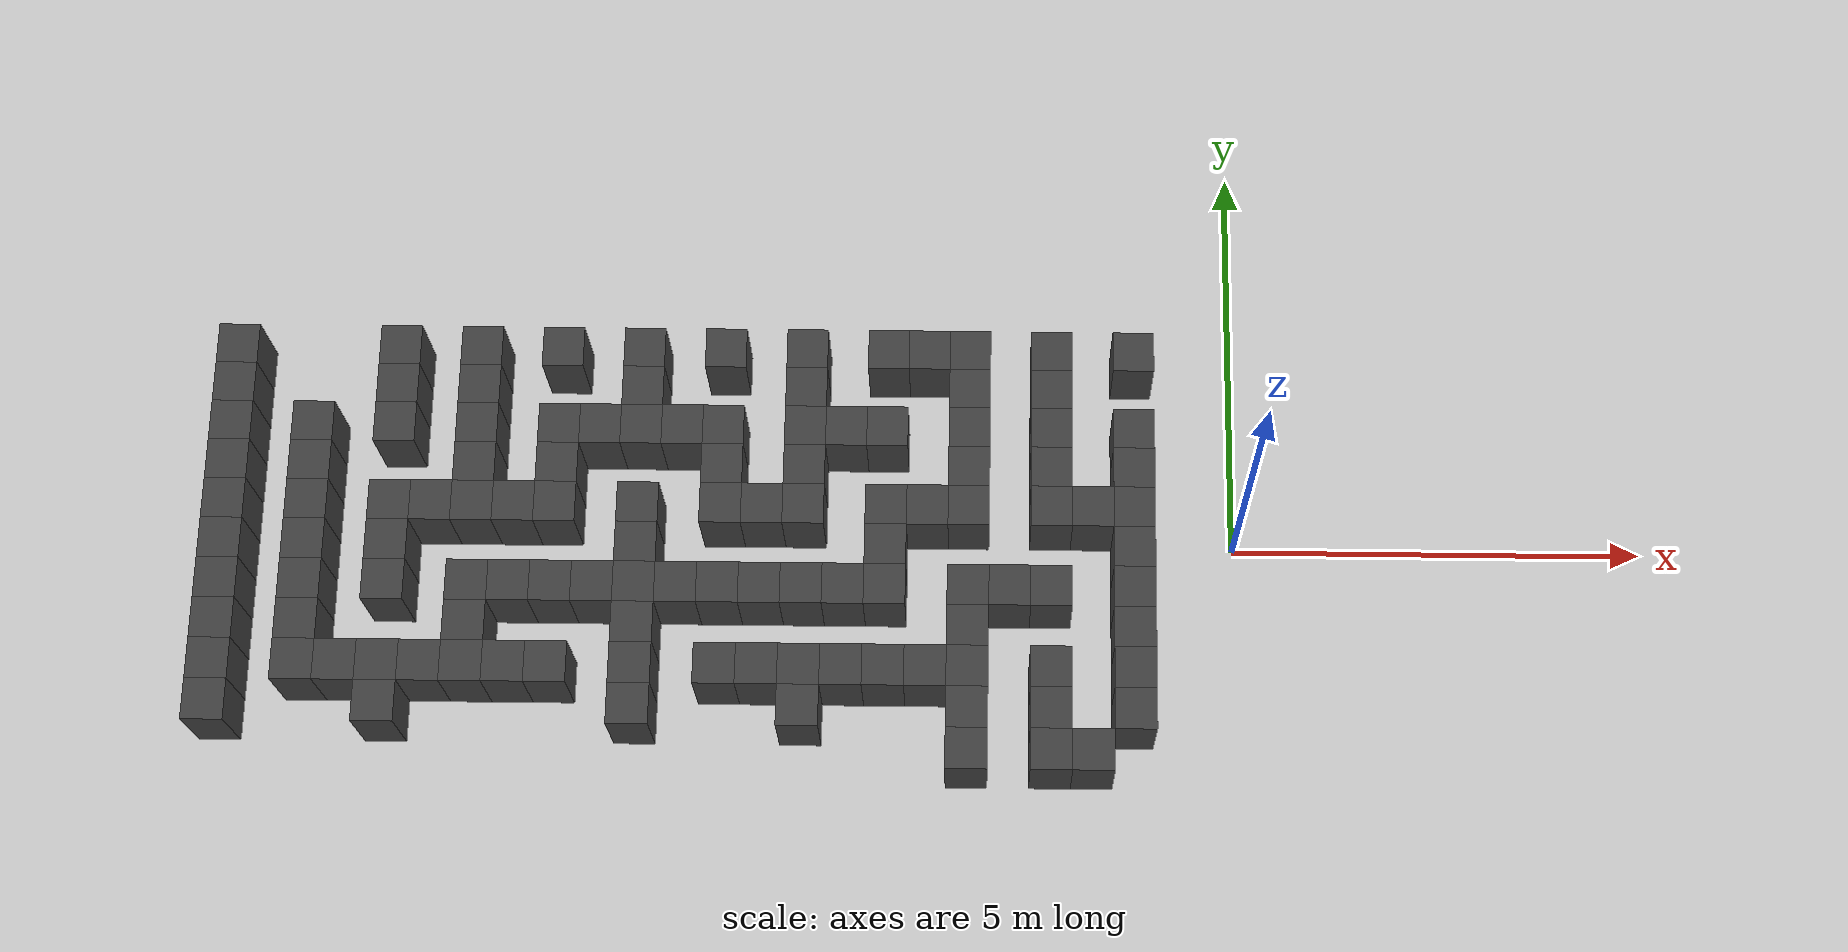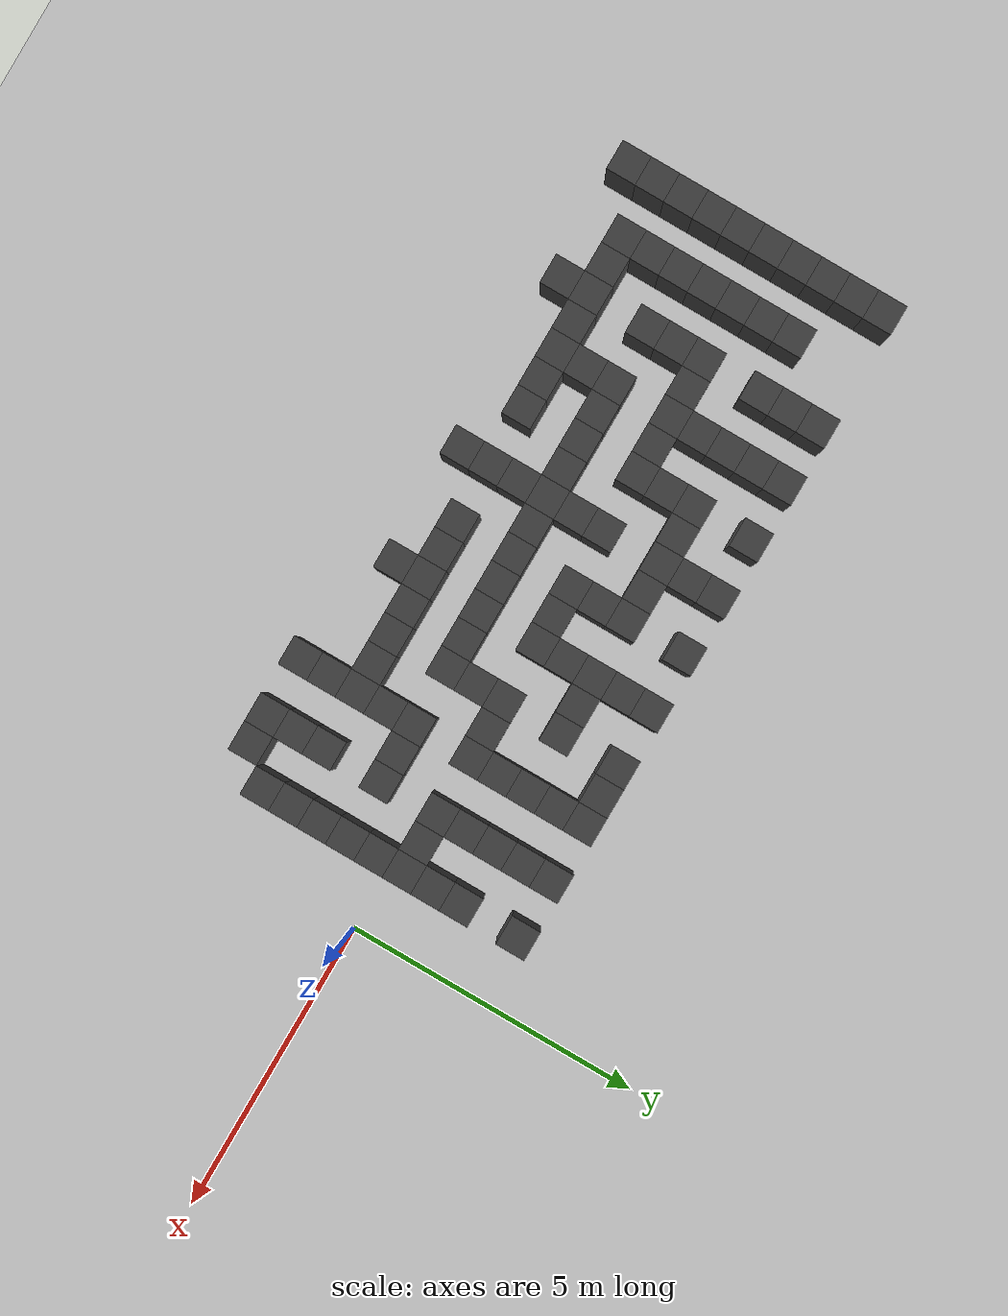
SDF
<sdf version="1.7">
 <world name="map_18553">
  <model name="ground_plane">
   <static>true</static>
   <link name="link">
    <collision name="collision">
     <geometry><plane><normal>0 0 1</normal><size>200 200</size></plane></geometry>
    </collision>
    <visual name="visual">
     <geometry><plane><normal>0 0 1</normal><size>200 200</size></plane></geometry>
     <material><ambient>0.8 0.8 0.8 1</ambient><diffuse>0.8 0.8 0.8 1</diffuse></material>
    </visual>
   </link>
  </model>
  <model name="maze_environment">
   <static>true</static>
   <link name="wall_510">
    <pose>-12.250 2.250 0.500 0 0 0</pose>
    <collision name="col"><geometry><box><size>0.5 0.5 1.0</size></box></geometry></collision>
    <visual name="vis">
     <geometry><box><size>0.5 0.5 1.0</size></box></geometry>
     <material><ambient>0.15 0.15 0.15 1</ambient><diffuse>0.25 0.25 0.25 1</diffuse></material>
    </visual>
   </link>
   <link name="wall_511">
    <pose>-10.250 2.250 0.500 0 0 0</pose>
    <collision name="col"><geometry><box><size>0.5 0.5 1.0</size></box></geometry></collision>
    <visual name="vis">
     <geometry><box><size>0.5 0.5 1.0</size></box></geometry>
     <material><ambient>0.15 0.15 0.15 1</ambient><diffuse>0.25 0.25 0.25 1</diffuse></material>
    </visual>
   </link>
   <link name="wall_512">
    <pose>-9.250 2.250 0.500 0 0 0</pose>
    <collision name="col"><geometry><box><size>0.5 0.5 1.0</size></box></geometry></collision>
    <visual name="vis">
     <geometry><box><size>0.5 0.5 1.0</size></box></geometry>
     <material><ambient>0.15 0.15 0.15 1</ambient><diffuse>0.25 0.25 0.25 1</diffuse></material>
    </visual>
   </link>
   <link name="wall_513">
    <pose>-8.250 2.250 0.500 0 0 0</pose>
    <collision name="col"><geometry><box><size>0.5 0.5 1.0</size></box></geometry></collision>
    <visual name="vis">
     <geometry><box><size>0.5 0.5 1.0</size></box></geometry>
     <material><ambient>0.15 0.15 0.15 1</ambient><diffuse>0.25 0.25 0.25 1</diffuse></material>
    </visual>
   </link>
   <link name="wall_514">
    <pose>-7.250 2.250 0.500 0 0 0</pose>
    <collision name="col"><geometry><box><size>0.5 0.5 1.0</size></box></geometry></collision>
    <visual name="vis">
     <geometry><box><size>0.5 0.5 1.0</size></box></geometry>
     <material><ambient>0.15 0.15 0.15 1</ambient><diffuse>0.25 0.25 0.25 1</diffuse></material>
    </visual>
   </link>
   <link name="wall_515">
    <pose>-6.250 2.250 0.500 0 0 0</pose>
    <collision name="col"><geometry><box><size>0.5 0.5 1.0</size></box></geometry></collision>
    <visual name="vis">
     <geometry><box><size>0.5 0.5 1.0</size></box></geometry>
     <material><ambient>0.15 0.15 0.15 1</ambient><diffuse>0.25 0.25 0.25 1</diffuse></material>
    </visual>
   </link>
   <link name="wall_516">
    <pose>-5.250 2.250 0.500 0 0 0</pose>
    <collision name="col"><geometry><box><size>0.5 0.5 1.0</size></box></geometry></collision>
    <visual name="vis">
     <geometry><box><size>0.5 0.5 1.0</size></box></geometry>
     <material><ambient>0.15 0.15 0.15 1</ambient><diffuse>0.25 0.25 0.25 1</diffuse></material>
    </visual>
   </link>
   <link name="wall_517">
    <pose>-4.250 2.250 0.500 0 0 0</pose>
    <collision name="col"><geometry><box><size>0.5 0.5 1.0</size></box></geometry></collision>
    <visual name="vis">
     <geometry><box><size>0.5 0.5 1.0</size></box></geometry>
     <material><ambient>0.15 0.15 0.15 1</ambient><diffuse>0.25 0.25 0.25 1</diffuse></material>
    </visual>
   </link>
   <link name="wall_518">
    <pose>-3.750 2.250 0.500 0 0 0</pose>
    <collision name="col"><geometry><box><size>0.5 0.5 1.0</size></box></geometry></collision>
    <visual name="vis">
     <geometry><box><size>0.5 0.5 1.0</size></box></geometry>
     <material><ambient>0.15 0.15 0.15 1</ambient><diffuse>0.25 0.25 0.25 1</diffuse></material>
    </visual>
   </link>
   <link name="wall_519">
    <pose>-3.250 2.250 0.500 0 0 0</pose>
    <collision name="col"><geometry><box><size>0.5 0.5 1.0</size></box></geometry></collision>
    <visual name="vis">
     <geometry><box><size>0.5 0.5 1.0</size></box></geometry>
     <material><ambient>0.15 0.15 0.15 1</ambient><diffuse>0.25 0.25 0.25 1</diffuse></material>
    </visual>
   </link>
   <link name="wall_520">
    <pose>-2.250 2.250 0.500 0 0 0</pose>
    <collision name="col"><geometry><box><size>0.5 0.5 1.0</size></box></geometry></collision>
    <visual name="vis">
     <geometry><box><size>0.5 0.5 1.0</size></box></geometry>
     <material><ambient>0.15 0.15 0.15 1</ambient><diffuse>0.25 0.25 0.25 1</diffuse></material>
    </visual>
   </link>
   <link name="wall_521">
    <pose>-1.250 2.250 0.500 0 0 0</pose>
    <collision name="col"><geometry><box><size>0.5 0.5 1.0</size></box></geometry></collision>
    <visual name="vis">
     <geometry><box><size>0.5 0.5 1.0</size></box></geometry>
     <material><ambient>0.15 0.15 0.15 1</ambient><diffuse>0.25 0.25 0.25 1</diffuse></material>
    </visual>
   </link>
   <link name="wall_542">
    <pose>-12.250 1.750 0.500 0 0 0</pose>
    <collision name="col"><geometry><box><size>0.5 0.5 1.0</size></box></geometry></collision>
    <visual name="vis">
     <geometry><box><size>0.5 0.5 1.0</size></box></geometry>
     <material><ambient>0.15 0.15 0.15 1</ambient><diffuse>0.25 0.25 0.25 1</diffuse></material>
    </visual>
   </link>
   <link name="wall_543">
    <pose>-10.250 1.750 0.500 0 0 0</pose>
    <collision name="col"><geometry><box><size>0.5 0.5 1.0</size></box></geometry></collision>
    <visual name="vis">
     <geometry><box><size>0.5 0.5 1.0</size></box></geometry>
     <material><ambient>0.15 0.15 0.15 1</ambient><diffuse>0.25 0.25 0.25 1</diffuse></material>
    </visual>
   </link>
   <link name="wall_544">
    <pose>-9.250 1.750 0.500 0 0 0</pose>
    <collision name="col"><geometry><box><size>0.5 0.5 1.0</size></box></geometry></collision>
    <visual name="vis">
     <geometry><box><size>0.5 0.5 1.0</size></box></geometry>
     <material><ambient>0.15 0.15 0.15 1</ambient><diffuse>0.25 0.25 0.25 1</diffuse></material>
    </visual>
   </link>
   <link name="wall_545">
    <pose>-7.250 1.750 0.500 0 0 0</pose>
    <collision name="col"><geometry><box><size>0.5 0.5 1.0</size></box></geometry></collision>
    <visual name="vis">
     <geometry><box><size>0.5 0.5 1.0</size></box></geometry>
     <material><ambient>0.15 0.15 0.15 1</ambient><diffuse>0.25 0.25 0.25 1</diffuse></material>
    </visual>
   </link>
   <link name="wall_546">
    <pose>-5.250 1.750 0.500 0 0 0</pose>
    <collision name="col"><geometry><box><size>0.5 0.5 1.0</size></box></geometry></collision>
    <visual name="vis">
     <geometry><box><size>0.5 0.5 1.0</size></box></geometry>
     <material><ambient>0.15 0.15 0.15 1</ambient><diffuse>0.25 0.25 0.25 1</diffuse></material>
    </visual>
   </link>
   <link name="wall_547">
    <pose>-3.250 1.750 0.500 0 0 0</pose>
    <collision name="col"><geometry><box><size>0.5 0.5 1.0</size></box></geometry></collision>
    <visual name="vis">
     <geometry><box><size>0.5 0.5 1.0</size></box></geometry>
     <material><ambient>0.15 0.15 0.15 1</ambient><diffuse>0.25 0.25 0.25 1</diffuse></material>
    </visual>
   </link>
   <link name="wall_548">
    <pose>-2.250 1.750 0.500 0 0 0</pose>
    <collision name="col"><geometry><box><size>0.5 0.5 1.0</size></box></geometry></collision>
    <visual name="vis">
     <geometry><box><size>0.5 0.5 1.0</size></box></geometry>
     <material><ambient>0.15 0.15 0.15 1</ambient><diffuse>0.25 0.25 0.25 1</diffuse></material>
    </visual>
   </link>
   <link name="wall_557">
    <pose>-12.250 1.250 0.500 0 0 0</pose>
    <collision name="col"><geometry><box><size>0.5 0.5 1.0</size></box></geometry></collision>
    <visual name="vis">
     <geometry><box><size>0.5 0.5 1.0</size></box></geometry>
     <material><ambient>0.15 0.15 0.15 1</ambient><diffuse>0.25 0.25 0.25 1</diffuse></material>
    </visual>
   </link>
   <link name="wall_558">
    <pose>-11.250 1.250 0.500 0 0 0</pose>
    <collision name="col"><geometry><box><size>0.5 0.5 1.0</size></box></geometry></collision>
    <visual name="vis">
     <geometry><box><size>0.5 0.5 1.0</size></box></geometry>
     <material><ambient>0.15 0.15 0.15 1</ambient><diffuse>0.25 0.25 0.25 1</diffuse></material>
    </visual>
   </link>
   <link name="wall_559">
    <pose>-10.250 1.250 0.500 0 0 0</pose>
    <collision name="col"><geometry><box><size>0.5 0.5 1.0</size></box></geometry></collision>
    <visual name="vis">
     <geometry><box><size>0.5 0.5 1.0</size></box></geometry>
     <material><ambient>0.15 0.15 0.15 1</ambient><diffuse>0.25 0.25 0.25 1</diffuse></material>
    </visual>
   </link>
   <link name="wall_560">
    <pose>-9.250 1.250 0.500 0 0 0</pose>
    <collision name="col"><geometry><box><size>0.5 0.5 1.0</size></box></geometry></collision>
    <visual name="vis">
     <geometry><box><size>0.5 0.5 1.0</size></box></geometry>
     <material><ambient>0.15 0.15 0.15 1</ambient><diffuse>0.25 0.25 0.25 1</diffuse></material>
    </visual>
   </link>
   <link name="wall_561">
    <pose>-8.250 1.250 0.500 0 0 0</pose>
    <collision name="col"><geometry><box><size>0.5 0.5 1.0</size></box></geometry></collision>
    <visual name="vis">
     <geometry><box><size>0.5 0.5 1.0</size></box></geometry>
     <material><ambient>0.15 0.15 0.15 1</ambient><diffuse>0.25 0.25 0.25 1</diffuse></material>
    </visual>
   </link>
   <link name="wall_562">
    <pose>-7.750 1.250 0.500 0 0 0</pose>
    <collision name="col"><geometry><box><size>0.5 0.5 1.0</size></box></geometry></collision>
    <visual name="vis">
     <geometry><box><size>0.5 0.5 1.0</size></box></geometry>
     <material><ambient>0.15 0.15 0.15 1</ambient><diffuse>0.25 0.25 0.25 1</diffuse></material>
    </visual>
   </link>
   <link name="wall_563">
    <pose>-7.250 1.250 0.500 0 0 0</pose>
    <collision name="col"><geometry><box><size>0.5 0.5 1.0</size></box></geometry></collision>
    <visual name="vis">
     <geometry><box><size>0.5 0.5 1.0</size></box></geometry>
     <material><ambient>0.15 0.15 0.15 1</ambient><diffuse>0.25 0.25 0.25 1</diffuse></material>
    </visual>
   </link>
   <link name="wall_564">
    <pose>-6.750 1.250 0.500 0 0 0</pose>
    <collision name="col"><geometry><box><size>0.5 0.5 1.0</size></box></geometry></collision>
    <visual name="vis">
     <geometry><box><size>0.5 0.5 1.0</size></box></geometry>
     <material><ambient>0.15 0.15 0.15 1</ambient><diffuse>0.25 0.25 0.25 1</diffuse></material>
    </visual>
   </link>
   <link name="wall_565">
    <pose>-6.250 1.250 0.500 0 0 0</pose>
    <collision name="col"><geometry><box><size>0.5 0.5 1.0</size></box></geometry></collision>
    <visual name="vis">
     <geometry><box><size>0.5 0.5 1.0</size></box></geometry>
     <material><ambient>0.15 0.15 0.15 1</ambient><diffuse>0.25 0.25 0.25 1</diffuse></material>
    </visual>
   </link>
   <link name="wall_566">
    <pose>-5.250 1.250 0.500 0 0 0</pose>
    <collision name="col"><geometry><box><size>0.5 0.5 1.0</size></box></geometry></collision>
    <visual name="vis">
     <geometry><box><size>0.5 0.5 1.0</size></box></geometry>
     <material><ambient>0.15 0.15 0.15 1</ambient><diffuse>0.25 0.25 0.25 1</diffuse></material>
    </visual>
   </link>
   <link name="wall_567">
    <pose>-4.750 1.250 0.500 0 0 0</pose>
    <collision name="col"><geometry><box><size>0.5 0.5 1.0</size></box></geometry></collision>
    <visual name="vis">
     <geometry><box><size>0.5 0.5 1.0</size></box></geometry>
     <material><ambient>0.15 0.15 0.15 1</ambient><diffuse>0.25 0.25 0.25 1</diffuse></material>
    </visual>
   </link>
   <link name="wall_568">
    <pose>-4.250 1.250 0.500 0 0 0</pose>
    <collision name="col"><geometry><box><size>0.5 0.5 1.0</size></box></geometry></collision>
    <visual name="vis">
     <geometry><box><size>0.5 0.5 1.0</size></box></geometry>
     <material><ambient>0.15 0.15 0.15 1</ambient><diffuse>0.25 0.25 0.25 1</diffuse></material>
    </visual>
   </link>
   <link name="wall_569">
    <pose>-3.250 1.250 0.500 0 0 0</pose>
    <collision name="col"><geometry><box><size>0.5 0.5 1.0</size></box></geometry></collision>
    <visual name="vis">
     <geometry><box><size>0.5 0.5 1.0</size></box></geometry>
     <material><ambient>0.15 0.15 0.15 1</ambient><diffuse>0.25 0.25 0.25 1</diffuse></material>
    </visual>
   </link>
   <link name="wall_570">
    <pose>-2.250 1.250 0.500 0 0 0</pose>
    <collision name="col"><geometry><box><size>0.5 0.5 1.0</size></box></geometry></collision>
    <visual name="vis">
     <geometry><box><size>0.5 0.5 1.0</size></box></geometry>
     <material><ambient>0.15 0.15 0.15 1</ambient><diffuse>0.25 0.25 0.25 1</diffuse></material>
    </visual>
   </link>
   <link name="wall_571">
    <pose>-1.250 1.250 0.500 0 0 0</pose>
    <collision name="col"><geometry><box><size>0.5 0.5 1.0</size></box></geometry></collision>
    <visual name="vis">
     <geometry><box><size>0.5 0.5 1.0</size></box></geometry>
     <material><ambient>0.15 0.15 0.15 1</ambient><diffuse>0.25 0.25 0.25 1</diffuse></material>
    </visual>
   </link>
   <link name="wall_591">
    <pose>-12.250 0.750 0.500 0 0 0</pose>
    <collision name="col"><geometry><box><size>0.5 0.5 1.0</size></box></geometry></collision>
    <visual name="vis">
     <geometry><box><size>0.5 0.5 1.0</size></box></geometry>
     <material><ambient>0.15 0.15 0.15 1</ambient><diffuse>0.25 0.25 0.25 1</diffuse></material>
    </visual>
   </link>
   <link name="wall_592">
    <pose>-11.250 0.750 0.500 0 0 0</pose>
    <collision name="col"><geometry><box><size>0.5 0.5 1.0</size></box></geometry></collision>
    <visual name="vis">
     <geometry><box><size>0.5 0.5 1.0</size></box></geometry>
     <material><ambient>0.15 0.15 0.15 1</ambient><diffuse>0.25 0.25 0.25 1</diffuse></material>
    </visual>
   </link>
   <link name="wall_593">
    <pose>-9.250 0.750 0.500 0 0 0</pose>
    <collision name="col"><geometry><box><size>0.5 0.5 1.0</size></box></geometry></collision>
    <visual name="vis">
     <geometry><box><size>0.5 0.5 1.0</size></box></geometry>
     <material><ambient>0.15 0.15 0.15 1</ambient><diffuse>0.25 0.25 0.25 1</diffuse></material>
    </visual>
   </link>
   <link name="wall_594">
    <pose>-8.250 0.750 0.500 0 0 0</pose>
    <collision name="col"><geometry><box><size>0.5 0.5 1.0</size></box></geometry></collision>
    <visual name="vis">
     <geometry><box><size>0.5 0.5 1.0</size></box></geometry>
     <material><ambient>0.15 0.15 0.15 1</ambient><diffuse>0.25 0.25 0.25 1</diffuse></material>
    </visual>
   </link>
   <link name="wall_595">
    <pose>-6.250 0.750 0.500 0 0 0</pose>
    <collision name="col"><geometry><box><size>0.5 0.5 1.0</size></box></geometry></collision>
    <visual name="vis">
     <geometry><box><size>0.5 0.5 1.0</size></box></geometry>
     <material><ambient>0.15 0.15 0.15 1</ambient><diffuse>0.25 0.25 0.25 1</diffuse></material>
    </visual>
   </link>
   <link name="wall_596">
    <pose>-5.250 0.750 0.500 0 0 0</pose>
    <collision name="col"><geometry><box><size>0.5 0.5 1.0</size></box></geometry></collision>
    <visual name="vis">
     <geometry><box><size>0.5 0.5 1.0</size></box></geometry>
     <material><ambient>0.15 0.15 0.15 1</ambient><diffuse>0.25 0.25 0.25 1</diffuse></material>
    </visual>
   </link>
   <link name="wall_597">
    <pose>-3.250 0.750 0.500 0 0 0</pose>
    <collision name="col"><geometry><box><size>0.5 0.5 1.0</size></box></geometry></collision>
    <visual name="vis">
     <geometry><box><size>0.5 0.5 1.0</size></box></geometry>
     <material><ambient>0.15 0.15 0.15 1</ambient><diffuse>0.25 0.25 0.25 1</diffuse></material>
    </visual>
   </link>
   <link name="wall_598">
    <pose>-2.250 0.750 0.500 0 0 0</pose>
    <collision name="col"><geometry><box><size>0.5 0.5 1.0</size></box></geometry></collision>
    <visual name="vis">
     <geometry><box><size>0.5 0.5 1.0</size></box></geometry>
     <material><ambient>0.15 0.15 0.15 1</ambient><diffuse>0.25 0.25 0.25 1</diffuse></material>
    </visual>
   </link>
   <link name="wall_599">
    <pose>-1.250 0.750 0.500 0 0 0</pose>
    <collision name="col"><geometry><box><size>0.5 0.5 1.0</size></box></geometry></collision>
    <visual name="vis">
     <geometry><box><size>0.5 0.5 1.0</size></box></geometry>
     <material><ambient>0.15 0.15 0.15 1</ambient><diffuse>0.25 0.25 0.25 1</diffuse></material>
    </visual>
   </link>
   <link name="wall_606">
    <pose>-12.250 0.250 0.500 0 0 0</pose>
    <collision name="col"><geometry><box><size>0.5 0.5 1.0</size></box></geometry></collision>
    <visual name="vis">
     <geometry><box><size>0.5 0.5 1.0</size></box></geometry>
     <material><ambient>0.15 0.15 0.15 1</ambient><diffuse>0.25 0.25 0.25 1</diffuse></material>
    </visual>
   </link>
   <link name="wall_607">
    <pose>-11.250 0.250 0.500 0 0 0</pose>
    <collision name="col"><geometry><box><size>0.5 0.5 1.0</size></box></geometry></collision>
    <visual name="vis">
     <geometry><box><size>0.5 0.5 1.0</size></box></geometry>
     <material><ambient>0.15 0.15 0.15 1</ambient><diffuse>0.25 0.25 0.25 1</diffuse></material>
    </visual>
   </link>
   <link name="wall_608">
    <pose>-10.250 0.250 0.500 0 0 0</pose>
    <collision name="col"><geometry><box><size>0.5 0.5 1.0</size></box></geometry></collision>
    <visual name="vis">
     <geometry><box><size>0.5 0.5 1.0</size></box></geometry>
     <material><ambient>0.15 0.15 0.15 1</ambient><diffuse>0.25 0.25 0.25 1</diffuse></material>
    </visual>
   </link>
   <link name="wall_609">
    <pose>-9.750 0.250 0.500 0 0 0</pose>
    <collision name="col"><geometry><box><size>0.5 0.5 1.0</size></box></geometry></collision>
    <visual name="vis">
     <geometry><box><size>0.5 0.5 1.0</size></box></geometry>
     <material><ambient>0.15 0.15 0.15 1</ambient><diffuse>0.25 0.25 0.25 1</diffuse></material>
    </visual>
   </link>
   <link name="wall_610">
    <pose>-9.250 0.250 0.500 0 0 0</pose>
    <collision name="col"><geometry><box><size>0.5 0.5 1.0</size></box></geometry></collision>
    <visual name="vis">
     <geometry><box><size>0.5 0.5 1.0</size></box></geometry>
     <material><ambient>0.15 0.15 0.15 1</ambient><diffuse>0.25 0.25 0.25 1</diffuse></material>
    </visual>
   </link>
   <link name="wall_611">
    <pose>-8.750 0.250 0.500 0 0 0</pose>
    <collision name="col"><geometry><box><size>0.5 0.5 1.0</size></box></geometry></collision>
    <visual name="vis">
     <geometry><box><size>0.5 0.5 1.0</size></box></geometry>
     <material><ambient>0.15 0.15 0.15 1</ambient><diffuse>0.25 0.25 0.25 1</diffuse></material>
    </visual>
   </link>
   <link name="wall_612">
    <pose>-8.250 0.250 0.500 0 0 0</pose>
    <collision name="col"><geometry><box><size>0.5 0.5 1.0</size></box></geometry></collision>
    <visual name="vis">
     <geometry><box><size>0.5 0.5 1.0</size></box></geometry>
     <material><ambient>0.15 0.15 0.15 1</ambient><diffuse>0.25 0.25 0.25 1</diffuse></material>
    </visual>
   </link>
   <link name="wall_613">
    <pose>-7.250 0.250 0.500 0 0 0</pose>
    <collision name="col"><geometry><box><size>0.5 0.5 1.0</size></box></geometry></collision>
    <visual name="vis">
     <geometry><box><size>0.5 0.5 1.0</size></box></geometry>
     <material><ambient>0.15 0.15 0.15 1</ambient><diffuse>0.25 0.25 0.25 1</diffuse></material>
    </visual>
   </link>
   <link name="wall_614">
    <pose>-6.250 0.250 0.500 0 0 0</pose>
    <collision name="col"><geometry><box><size>0.5 0.5 1.0</size></box></geometry></collision>
    <visual name="vis">
     <geometry><box><size>0.5 0.5 1.0</size></box></geometry>
     <material><ambient>0.15 0.15 0.15 1</ambient><diffuse>0.25 0.25 0.25 1</diffuse></material>
    </visual>
   </link>
   <link name="wall_615">
    <pose>-5.750 0.250 0.500 0 0 0</pose>
    <collision name="col"><geometry><box><size>0.5 0.5 1.0</size></box></geometry></collision>
    <visual name="vis">
     <geometry><box><size>0.5 0.5 1.0</size></box></geometry>
     <material><ambient>0.15 0.15 0.15 1</ambient><diffuse>0.25 0.25 0.25 1</diffuse></material>
    </visual>
   </link>
   <link name="wall_616">
    <pose>-5.250 0.250 0.500 0 0 0</pose>
    <collision name="col"><geometry><box><size>0.5 0.5 1.0</size></box></geometry></collision>
    <visual name="vis">
     <geometry><box><size>0.5 0.5 1.0</size></box></geometry>
     <material><ambient>0.15 0.15 0.15 1</ambient><diffuse>0.25 0.25 0.25 1</diffuse></material>
    </visual>
   </link>
   <link name="wall_617">
    <pose>-4.250 0.250 0.500 0 0 0</pose>
    <collision name="col"><geometry><box><size>0.5 0.5 1.0</size></box></geometry></collision>
    <visual name="vis">
     <geometry><box><size>0.5 0.5 1.0</size></box></geometry>
     <material><ambient>0.15 0.15 0.15 1</ambient><diffuse>0.25 0.25 0.25 1</diffuse></material>
    </visual>
   </link>
   <link name="wall_618">
    <pose>-3.750 0.250 0.500 0 0 0</pose>
    <collision name="col"><geometry><box><size>0.5 0.5 1.0</size></box></geometry></collision>
    <visual name="vis">
     <geometry><box><size>0.5 0.5 1.0</size></box></geometry>
     <material><ambient>0.15 0.15 0.15 1</ambient><diffuse>0.25 0.25 0.25 1</diffuse></material>
    </visual>
   </link>
   <link name="wall_619">
    <pose>-3.250 0.250 0.500 0 0 0</pose>
    <collision name="col"><geometry><box><size>0.5 0.5 1.0</size></box></geometry></collision>
    <visual name="vis">
     <geometry><box><size>0.5 0.5 1.0</size></box></geometry>
     <material><ambient>0.15 0.15 0.15 1</ambient><diffuse>0.25 0.25 0.25 1</diffuse></material>
    </visual>
   </link>
   <link name="wall_620">
    <pose>-2.250 0.250 0.500 0 0 0</pose>
    <collision name="col"><geometry><box><size>0.5 0.5 1.0</size></box></geometry></collision>
    <visual name="vis">
     <geometry><box><size>0.5 0.5 1.0</size></box></geometry>
     <material><ambient>0.15 0.15 0.15 1</ambient><diffuse>0.25 0.25 0.25 1</diffuse></material>
    </visual>
   </link>
   <link name="wall_621">
    <pose>-1.750 0.250 0.500 0 0 0</pose>
    <collision name="col"><geometry><box><size>0.5 0.5 1.0</size></box></geometry></collision>
    <visual name="vis">
     <geometry><box><size>0.5 0.5 1.0</size></box></geometry>
     <material><ambient>0.15 0.15 0.15 1</ambient><diffuse>0.25 0.25 0.25 1</diffuse></material>
    </visual>
   </link>
   <link name="wall_622">
    <pose>-1.250 0.250 0.500 0 0 0</pose>
    <collision name="col"><geometry><box><size>0.5 0.5 1.0</size></box></geometry></collision>
    <visual name="vis">
     <geometry><box><size>0.5 0.5 1.0</size></box></geometry>
     <material><ambient>0.15 0.15 0.15 1</ambient><diffuse>0.25 0.25 0.25 1</diffuse></material>
    </visual>
   </link>
   <link name="wall_643">
    <pose>-12.250 -0.250 0.500 0 0 0</pose>
    <collision name="col"><geometry><box><size>0.5 0.5 1.0</size></box></geometry></collision>
    <visual name="vis">
     <geometry><box><size>0.5 0.5 1.0</size></box></geometry>
     <material><ambient>0.15 0.15 0.15 1</ambient><diffuse>0.25 0.25 0.25 1</diffuse></material>
    </visual>
   </link>
   <link name="wall_644">
    <pose>-11.250 -0.250 0.500 0 0 0</pose>
    <collision name="col"><geometry><box><size>0.5 0.5 1.0</size></box></geometry></collision>
    <visual name="vis">
     <geometry><box><size>0.5 0.5 1.0</size></box></geometry>
     <material><ambient>0.15 0.15 0.15 1</ambient><diffuse>0.25 0.25 0.25 1</diffuse></material>
    </visual>
   </link>
   <link name="wall_645">
    <pose>-10.250 -0.250 0.500 0 0 0</pose>
    <collision name="col"><geometry><box><size>0.5 0.5 1.0</size></box></geometry></collision>
    <visual name="vis">
     <geometry><box><size>0.5 0.5 1.0</size></box></geometry>
     <material><ambient>0.15 0.15 0.15 1</ambient><diffuse>0.25 0.25 0.25 1</diffuse></material>
    </visual>
   </link>
   <link name="wall_646">
    <pose>-7.250 -0.250 0.500 0 0 0</pose>
    <collision name="col"><geometry><box><size>0.5 0.5 1.0</size></box></geometry></collision>
    <visual name="vis">
     <geometry><box><size>0.5 0.5 1.0</size></box></geometry>
     <material><ambient>0.15 0.15 0.15 1</ambient><diffuse>0.25 0.25 0.25 1</diffuse></material>
    </visual>
   </link>
   <link name="wall_647">
    <pose>-4.250 -0.250 0.500 0 0 0</pose>
    <collision name="col"><geometry><box><size>0.5 0.5 1.0</size></box></geometry></collision>
    <visual name="vis">
     <geometry><box><size>0.5 0.5 1.0</size></box></geometry>
     <material><ambient>0.15 0.15 0.15 1</ambient><diffuse>0.25 0.25 0.25 1</diffuse></material>
    </visual>
   </link>
   <link name="wall_648">
    <pose>-1.250 -0.250 0.500 0 0 0</pose>
    <collision name="col"><geometry><box><size>0.5 0.5 1.0</size></box></geometry></collision>
    <visual name="vis">
     <geometry><box><size>0.5 0.5 1.0</size></box></geometry>
     <material><ambient>0.15 0.15 0.15 1</ambient><diffuse>0.25 0.25 0.25 1</diffuse></material>
    </visual>
   </link>
   <link name="wall_654">
    <pose>-12.250 -0.750 0.500 0 0 0</pose>
    <collision name="col"><geometry><box><size>0.5 0.5 1.0</size></box></geometry></collision>
    <visual name="vis">
     <geometry><box><size>0.5 0.5 1.0</size></box></geometry>
     <material><ambient>0.15 0.15 0.15 1</ambient><diffuse>0.25 0.25 0.25 1</diffuse></material>
    </visual>
   </link>
   <link name="wall_655">
    <pose>-11.250 -0.750 0.500 0 0 0</pose>
    <collision name="col"><geometry><box><size>0.5 0.5 1.0</size></box></geometry></collision>
    <visual name="vis">
     <geometry><box><size>0.5 0.5 1.0</size></box></geometry>
     <material><ambient>0.15 0.15 0.15 1</ambient><diffuse>0.25 0.25 0.25 1</diffuse></material>
    </visual>
   </link>
   <link name="wall_656">
    <pose>-10.250 -0.750 0.500 0 0 0</pose>
    <collision name="col"><geometry><box><size>0.5 0.5 1.0</size></box></geometry></collision>
    <visual name="vis">
     <geometry><box><size>0.5 0.5 1.0</size></box></geometry>
     <material><ambient>0.15 0.15 0.15 1</ambient><diffuse>0.25 0.25 0.25 1</diffuse></material>
    </visual>
   </link>
   <link name="wall_657">
    <pose>-9.250 -0.750 0.500 0 0 0</pose>
    <collision name="col"><geometry><box><size>0.5 0.5 1.0</size></box></geometry></collision>
    <visual name="vis">
     <geometry><box><size>0.5 0.5 1.0</size></box></geometry>
     <material><ambient>0.15 0.15 0.15 1</ambient><diffuse>0.25 0.25 0.25 1</diffuse></material>
    </visual>
   </link>
   <link name="wall_658">
    <pose>-8.750 -0.750 0.500 0 0 0</pose>
    <collision name="col"><geometry><box><size>0.5 0.5 1.0</size></box></geometry></collision>
    <visual name="vis">
     <geometry><box><size>0.5 0.5 1.0</size></box></geometry>
     <material><ambient>0.15 0.15 0.15 1</ambient><diffuse>0.25 0.25 0.25 1</diffuse></material>
    </visual>
   </link>
   <link name="wall_659">
    <pose>-8.250 -0.750 0.500 0 0 0</pose>
    <collision name="col"><geometry><box><size>0.5 0.5 1.0</size></box></geometry></collision>
    <visual name="vis">
     <geometry><box><size>0.5 0.5 1.0</size></box></geometry>
     <material><ambient>0.15 0.15 0.15 1</ambient><diffuse>0.25 0.25 0.25 1</diffuse></material>
    </visual>
   </link>
   <link name="wall_660">
    <pose>-7.750 -0.750 0.500 0 0 0</pose>
    <collision name="col"><geometry><box><size>0.5 0.5 1.0</size></box></geometry></collision>
    <visual name="vis">
     <geometry><box><size>0.5 0.5 1.0</size></box></geometry>
     <material><ambient>0.15 0.15 0.15 1</ambient><diffuse>0.25 0.25 0.25 1</diffuse></material>
    </visual>
   </link>
   <link name="wall_661">
    <pose>-7.250 -0.750 0.500 0 0 0</pose>
    <collision name="col"><geometry><box><size>0.5 0.5 1.0</size></box></geometry></collision>
    <visual name="vis">
     <geometry><box><size>0.5 0.5 1.0</size></box></geometry>
     <material><ambient>0.15 0.15 0.15 1</ambient><diffuse>0.25 0.25 0.25 1</diffuse></material>
    </visual>
   </link>
   <link name="wall_662">
    <pose>-6.750 -0.750 0.500 0 0 0</pose>
    <collision name="col"><geometry><box><size>0.5 0.5 1.0</size></box></geometry></collision>
    <visual name="vis">
     <geometry><box><size>0.5 0.5 1.0</size></box></geometry>
     <material><ambient>0.15 0.15 0.15 1</ambient><diffuse>0.25 0.25 0.25 1</diffuse></material>
    </visual>
   </link>
   <link name="wall_663">
    <pose>-6.250 -0.750 0.500 0 0 0</pose>
    <collision name="col"><geometry><box><size>0.5 0.5 1.0</size></box></geometry></collision>
    <visual name="vis">
     <geometry><box><size>0.5 0.5 1.0</size></box></geometry>
     <material><ambient>0.15 0.15 0.15 1</ambient><diffuse>0.25 0.25 0.25 1</diffuse></material>
    </visual>
   </link>
   <link name="wall_664">
    <pose>-5.750 -0.750 0.500 0 0 0</pose>
    <collision name="col"><geometry><box><size>0.5 0.5 1.0</size></box></geometry></collision>
    <visual name="vis">
     <geometry><box><size>0.5 0.5 1.0</size></box></geometry>
     <material><ambient>0.15 0.15 0.15 1</ambient><diffuse>0.25 0.25 0.25 1</diffuse></material>
    </visual>
   </link>
   <link name="wall_665">
    <pose>-5.250 -0.750 0.500 0 0 0</pose>
    <collision name="col"><geometry><box><size>0.5 0.5 1.0</size></box></geometry></collision>
    <visual name="vis">
     <geometry><box><size>0.5 0.5 1.0</size></box></geometry>
     <material><ambient>0.15 0.15 0.15 1</ambient><diffuse>0.25 0.25 0.25 1</diffuse></material>
    </visual>
   </link>
   <link name="wall_666">
    <pose>-4.750 -0.750 0.500 0 0 0</pose>
    <collision name="col"><geometry><box><size>0.5 0.5 1.0</size></box></geometry></collision>
    <visual name="vis">
     <geometry><box><size>0.5 0.5 1.0</size></box></geometry>
     <material><ambient>0.15 0.15 0.15 1</ambient><diffuse>0.25 0.25 0.25 1</diffuse></material>
    </visual>
   </link>
   <link name="wall_667">
    <pose>-4.250 -0.750 0.500 0 0 0</pose>
    <collision name="col"><geometry><box><size>0.5 0.5 1.0</size></box></geometry></collision>
    <visual name="vis">
     <geometry><box><size>0.5 0.5 1.0</size></box></geometry>
     <material><ambient>0.15 0.15 0.15 1</ambient><diffuse>0.25 0.25 0.25 1</diffuse></material>
    </visual>
   </link>
   <link name="wall_668">
    <pose>-3.250 -0.750 0.500 0 0 0</pose>
    <collision name="col"><geometry><box><size>0.5 0.5 1.0</size></box></geometry></collision>
    <visual name="vis">
     <geometry><box><size>0.5 0.5 1.0</size></box></geometry>
     <material><ambient>0.15 0.15 0.15 1</ambient><diffuse>0.25 0.25 0.25 1</diffuse></material>
    </visual>
   </link>
   <link name="wall_669">
    <pose>-2.750 -0.750 0.500 0 0 0</pose>
    <collision name="col"><geometry><box><size>0.5 0.5 1.0</size></box></geometry></collision>
    <visual name="vis">
     <geometry><box><size>0.5 0.5 1.0</size></box></geometry>
     <material><ambient>0.15 0.15 0.15 1</ambient><diffuse>0.25 0.25 0.25 1</diffuse></material>
    </visual>
   </link>
   <link name="wall_670">
    <pose>-2.250 -0.750 0.500 0 0 0</pose>
    <collision name="col"><geometry><box><size>0.5 0.5 1.0</size></box></geometry></collision>
    <visual name="vis">
     <geometry><box><size>0.5 0.5 1.0</size></box></geometry>
     <material><ambient>0.15 0.15 0.15 1</ambient><diffuse>0.25 0.25 0.25 1</diffuse></material>
    </visual>
   </link>
   <link name="wall_671">
    <pose>-1.250 -0.750 0.500 0 0 0</pose>
    <collision name="col"><geometry><box><size>0.5 0.5 1.0</size></box></geometry></collision>
    <visual name="vis">
     <geometry><box><size>0.5 0.5 1.0</size></box></geometry>
     <material><ambient>0.15 0.15 0.15 1</ambient><diffuse>0.25 0.25 0.25 1</diffuse></material>
    </visual>
   </link>
   <link name="wall_691">
    <pose>-12.250 -1.250 0.500 0 0 0</pose>
    <collision name="col"><geometry><box><size>0.5 0.5 1.0</size></box></geometry></collision>
    <visual name="vis">
     <geometry><box><size>0.5 0.5 1.0</size></box></geometry>
     <material><ambient>0.15 0.15 0.15 1</ambient><diffuse>0.25 0.25 0.25 1</diffuse></material>
    </visual>
   </link>
   <link name="wall_692">
    <pose>-11.250 -1.250 0.500 0 0 0</pose>
    <collision name="col"><geometry><box><size>0.5 0.5 1.0</size></box></geometry></collision>
    <visual name="vis">
     <geometry><box><size>0.5 0.5 1.0</size></box></geometry>
     <material><ambient>0.15 0.15 0.15 1</ambient><diffuse>0.25 0.25 0.25 1</diffuse></material>
    </visual>
   </link>
   <link name="wall_693">
    <pose>-9.250 -1.250 0.500 0 0 0</pose>
    <collision name="col"><geometry><box><size>0.5 0.5 1.0</size></box></geometry></collision>
    <visual name="vis">
     <geometry><box><size>0.5 0.5 1.0</size></box></geometry>
     <material><ambient>0.15 0.15 0.15 1</ambient><diffuse>0.25 0.25 0.25 1</diffuse></material>
    </visual>
   </link>
   <link name="wall_694">
    <pose>-7.250 -1.250 0.500 0 0 0</pose>
    <collision name="col"><geometry><box><size>0.5 0.5 1.0</size></box></geometry></collision>
    <visual name="vis">
     <geometry><box><size>0.5 0.5 1.0</size></box></geometry>
     <material><ambient>0.15 0.15 0.15 1</ambient><diffuse>0.25 0.25 0.25 1</diffuse></material>
    </visual>
   </link>
   <link name="wall_695">
    <pose>-3.250 -1.250 0.500 0 0 0</pose>
    <collision name="col"><geometry><box><size>0.5 0.5 1.0</size></box></geometry></collision>
    <visual name="vis">
     <geometry><box><size>0.5 0.5 1.0</size></box></geometry>
     <material><ambient>0.15 0.15 0.15 1</ambient><diffuse>0.25 0.25 0.25 1</diffuse></material>
    </visual>
   </link>
   <link name="wall_696">
    <pose>-1.250 -1.250 0.500 0 0 0</pose>
    <collision name="col"><geometry><box><size>0.5 0.5 1.0</size></box></geometry></collision>
    <visual name="vis">
     <geometry><box><size>0.5 0.5 1.0</size></box></geometry>
     <material><ambient>0.15 0.15 0.15 1</ambient><diffuse>0.25 0.25 0.25 1</diffuse></material>
    </visual>
   </link>
   <link name="wall_704">
    <pose>-12.250 -1.750 0.500 0 0 0</pose>
    <collision name="col"><geometry><box><size>0.5 0.5 1.0</size></box></geometry></collision>
    <visual name="vis">
     <geometry><box><size>0.5 0.5 1.0</size></box></geometry>
     <material><ambient>0.15 0.15 0.15 1</ambient><diffuse>0.25 0.25 0.25 1</diffuse></material>
    </visual>
   </link>
   <link name="wall_705">
    <pose>-11.250 -1.750 0.500 0 0 0</pose>
    <collision name="col"><geometry><box><size>0.5 0.5 1.0</size></box></geometry></collision>
    <visual name="vis">
     <geometry><box><size>0.5 0.5 1.0</size></box></geometry>
     <material><ambient>0.15 0.15 0.15 1</ambient><diffuse>0.25 0.25 0.25 1</diffuse></material>
    </visual>
   </link>
   <link name="wall_706">
    <pose>-10.750 -1.750 0.500 0 0 0</pose>
    <collision name="col"><geometry><box><size>0.5 0.5 1.0</size></box></geometry></collision>
    <visual name="vis">
     <geometry><box><size>0.5 0.5 1.0</size></box></geometry>
     <material><ambient>0.15 0.15 0.15 1</ambient><diffuse>0.25 0.25 0.25 1</diffuse></material>
    </visual>
   </link>
   <link name="wall_707">
    <pose>-10.250 -1.750 0.500 0 0 0</pose>
    <collision name="col"><geometry><box><size>0.5 0.5 1.0</size></box></geometry></collision>
    <visual name="vis">
     <geometry><box><size>0.5 0.5 1.0</size></box></geometry>
     <material><ambient>0.15 0.15 0.15 1</ambient><diffuse>0.25 0.25 0.25 1</diffuse></material>
    </visual>
   </link>
   <link name="wall_708">
    <pose>-9.750 -1.750 0.500 0 0 0</pose>
    <collision name="col"><geometry><box><size>0.5 0.5 1.0</size></box></geometry></collision>
    <visual name="vis">
     <geometry><box><size>0.5 0.5 1.0</size></box></geometry>
     <material><ambient>0.15 0.15 0.15 1</ambient><diffuse>0.25 0.25 0.25 1</diffuse></material>
    </visual>
   </link>
   <link name="wall_709">
    <pose>-9.250 -1.750 0.500 0 0 0</pose>
    <collision name="col"><geometry><box><size>0.5 0.5 1.0</size></box></geometry></collision>
    <visual name="vis">
     <geometry><box><size>0.5 0.5 1.0</size></box></geometry>
     <material><ambient>0.15 0.15 0.15 1</ambient><diffuse>0.25 0.25 0.25 1</diffuse></material>
    </visual>
   </link>
   <link name="wall_710">
    <pose>-8.750 -1.750 0.500 0 0 0</pose>
    <collision name="col"><geometry><box><size>0.5 0.5 1.0</size></box></geometry></collision>
    <visual name="vis">
     <geometry><box><size>0.5 0.5 1.0</size></box></geometry>
     <material><ambient>0.15 0.15 0.15 1</ambient><diffuse>0.25 0.25 0.25 1</diffuse></material>
    </visual>
   </link>
   <link name="wall_711">
    <pose>-8.250 -1.750 0.500 0 0 0</pose>
    <collision name="col"><geometry><box><size>0.5 0.5 1.0</size></box></geometry></collision>
    <visual name="vis">
     <geometry><box><size>0.5 0.5 1.0</size></box></geometry>
     <material><ambient>0.15 0.15 0.15 1</ambient><diffuse>0.25 0.25 0.25 1</diffuse></material>
    </visual>
   </link>
   <link name="wall_712">
    <pose>-7.250 -1.750 0.500 0 0 0</pose>
    <collision name="col"><geometry><box><size>0.5 0.5 1.0</size></box></geometry></collision>
    <visual name="vis">
     <geometry><box><size>0.5 0.5 1.0</size></box></geometry>
     <material><ambient>0.15 0.15 0.15 1</ambient><diffuse>0.25 0.25 0.25 1</diffuse></material>
    </visual>
   </link>
   <link name="wall_713">
    <pose>-6.250 -1.750 0.500 0 0 0</pose>
    <collision name="col"><geometry><box><size>0.5 0.5 1.0</size></box></geometry></collision>
    <visual name="vis">
     <geometry><box><size>0.5 0.5 1.0</size></box></geometry>
     <material><ambient>0.15 0.15 0.15 1</ambient><diffuse>0.25 0.25 0.25 1</diffuse></material>
    </visual>
   </link>
   <link name="wall_714">
    <pose>-5.750 -1.750 0.500 0 0 0</pose>
    <collision name="col"><geometry><box><size>0.5 0.5 1.0</size></box></geometry></collision>
    <visual name="vis">
     <geometry><box><size>0.5 0.5 1.0</size></box></geometry>
     <material><ambient>0.15 0.15 0.15 1</ambient><diffuse>0.25 0.25 0.25 1</diffuse></material>
    </visual>
   </link>
   <link name="wall_715">
    <pose>-5.250 -1.750 0.500 0 0 0</pose>
    <collision name="col"><geometry><box><size>0.5 0.5 1.0</size></box></geometry></collision>
    <visual name="vis">
     <geometry><box><size>0.5 0.5 1.0</size></box></geometry>
     <material><ambient>0.15 0.15 0.15 1</ambient><diffuse>0.25 0.25 0.25 1</diffuse></material>
    </visual>
   </link>
   <link name="wall_716">
    <pose>-4.750 -1.750 0.500 0 0 0</pose>
    <collision name="col"><geometry><box><size>0.5 0.5 1.0</size></box></geometry></collision>
    <visual name="vis">
     <geometry><box><size>0.5 0.5 1.0</size></box></geometry>
     <material><ambient>0.15 0.15 0.15 1</ambient><diffuse>0.25 0.25 0.25 1</diffuse></material>
    </visual>
   </link>
   <link name="wall_717">
    <pose>-4.250 -1.750 0.500 0 0 0</pose>
    <collision name="col"><geometry><box><size>0.5 0.5 1.0</size></box></geometry></collision>
    <visual name="vis">
     <geometry><box><size>0.5 0.5 1.0</size></box></geometry>
     <material><ambient>0.15 0.15 0.15 1</ambient><diffuse>0.25 0.25 0.25 1</diffuse></material>
    </visual>
   </link>
   <link name="wall_718">
    <pose>-3.750 -1.750 0.500 0 0 0</pose>
    <collision name="col"><geometry><box><size>0.5 0.5 1.0</size></box></geometry></collision>
    <visual name="vis">
     <geometry><box><size>0.5 0.5 1.0</size></box></geometry>
     <material><ambient>0.15 0.15 0.15 1</ambient><diffuse>0.25 0.25 0.25 1</diffuse></material>
    </visual>
   </link>
   <link name="wall_719">
    <pose>-3.250 -1.750 0.500 0 0 0</pose>
    <collision name="col"><geometry><box><size>0.5 0.5 1.0</size></box></geometry></collision>
    <visual name="vis">
     <geometry><box><size>0.5 0.5 1.0</size></box></geometry>
     <material><ambient>0.15 0.15 0.15 1</ambient><diffuse>0.25 0.25 0.25 1</diffuse></material>
    </visual>
   </link>
   <link name="wall_720">
    <pose>-2.250 -1.750 0.500 0 0 0</pose>
    <collision name="col"><geometry><box><size>0.5 0.5 1.0</size></box></geometry></collision>
    <visual name="vis">
     <geometry><box><size>0.5 0.5 1.0</size></box></geometry>
     <material><ambient>0.15 0.15 0.15 1</ambient><diffuse>0.25 0.25 0.25 1</diffuse></material>
    </visual>
   </link>
   <link name="wall_721">
    <pose>-1.250 -1.750 0.500 0 0 0</pose>
    <collision name="col"><geometry><box><size>0.5 0.5 1.0</size></box></geometry></collision>
    <visual name="vis">
     <geometry><box><size>0.5 0.5 1.0</size></box></geometry>
     <material><ambient>0.15 0.15 0.15 1</ambient><diffuse>0.25 0.25 0.25 1</diffuse></material>
    </visual>
   </link>
   <link name="wall_743">
    <pose>-12.250 -2.250 0.500 0 0 0</pose>
    <collision name="col"><geometry><box><size>0.5 0.5 1.0</size></box></geometry></collision>
    <visual name="vis">
     <geometry><box><size>0.5 0.5 1.0</size></box></geometry>
     <material><ambient>0.15 0.15 0.15 1</ambient><diffuse>0.25 0.25 0.25 1</diffuse></material>
    </visual>
   </link>
   <link name="wall_744">
    <pose>-10.250 -2.250 0.500 0 0 0</pose>
    <collision name="col"><geometry><box><size>0.5 0.5 1.0</size></box></geometry></collision>
    <visual name="vis">
     <geometry><box><size>0.5 0.5 1.0</size></box></geometry>
     <material><ambient>0.15 0.15 0.15 1</ambient><diffuse>0.25 0.25 0.25 1</diffuse></material>
    </visual>
   </link>
   <link name="wall_745">
    <pose>-7.250 -2.250 0.500 0 0 0</pose>
    <collision name="col"><geometry><box><size>0.5 0.5 1.0</size></box></geometry></collision>
    <visual name="vis">
     <geometry><box><size>0.5 0.5 1.0</size></box></geometry>
     <material><ambient>0.15 0.15 0.15 1</ambient><diffuse>0.25 0.25 0.25 1</diffuse></material>
    </visual>
   </link>
   <link name="wall_746">
    <pose>-5.250 -2.250 0.500 0 0 0</pose>
    <collision name="col"><geometry><box><size>0.5 0.5 1.0</size></box></geometry></collision>
    <visual name="vis">
     <geometry><box><size>0.5 0.5 1.0</size></box></geometry>
     <material><ambient>0.15 0.15 0.15 1</ambient><diffuse>0.25 0.25 0.25 1</diffuse></material>
    </visual>
   </link>
   <link name="wall_747">
    <pose>-3.250 -2.250 0.500 0 0 0</pose>
    <collision name="col"><geometry><box><size>0.5 0.5 1.0</size></box></geometry></collision>
    <visual name="vis">
     <geometry><box><size>0.5 0.5 1.0</size></box></geometry>
     <material><ambient>0.15 0.15 0.15 1</ambient><diffuse>0.25 0.25 0.25 1</diffuse></material>
    </visual>
   </link>
   <link name="wall_748">
    <pose>-2.250 -2.250 0.500 0 0 0</pose>
    <collision name="col"><geometry><box><size>0.5 0.5 1.0</size></box></geometry></collision>
    <visual name="vis">
     <geometry><box><size>0.5 0.5 1.0</size></box></geometry>
     <material><ambient>0.15 0.15 0.15 1</ambient><diffuse>0.25 0.25 0.25 1</diffuse></material>
    </visual>
   </link>
   <link name="wall_749">
    <pose>-1.250 -2.250 0.500 0 0 0</pose>
    <collision name="col"><geometry><box><size>0.5 0.5 1.0</size></box></geometry></collision>
    <visual name="vis">
     <geometry><box><size>0.5 0.5 1.0</size></box></geometry>
     <material><ambient>0.15 0.15 0.15 1</ambient><diffuse>0.25 0.25 0.25 1</diffuse></material>
    </visual>
   </link>
   <link name="wall_769">
    <pose>-3.250 -2.750 0.500 0 0 0</pose>
    <collision name="col"><geometry><box><size>0.5 0.5 1.0</size></box></geometry></collision>
    <visual name="vis">
     <geometry><box><size>0.5 0.5 1.0</size></box></geometry>
     <material><ambient>0.15 0.15 0.15 1</ambient><diffuse>0.25 0.25 0.25 1</diffuse></material>
    </visual>
   </link>
   <link name="wall_770">
    <pose>-2.250 -2.750 0.500 0 0 0</pose>
    <collision name="col"><geometry><box><size>0.5 0.5 1.0</size></box></geometry></collision>
    <visual name="vis">
     <geometry><box><size>0.5 0.5 1.0</size></box></geometry>
     <material><ambient>0.15 0.15 0.15 1</ambient><diffuse>0.25 0.25 0.25 1</diffuse></material>
    </visual>
   </link>
   <link name="wall_771">
    <pose>-1.750 -2.750 0.500 0 0 0</pose>
    <collision name="col"><geometry><box><size>0.5 0.5 1.0</size></box></geometry></collision>
    <visual name="vis">
     <geometry><box><size>0.5 0.5 1.0</size></box></geometry>
     <material><ambient>0.15 0.15 0.15 1</ambient><diffuse>0.25 0.25 0.25 1</diffuse></material>
    </visual>
   </link>
  </model>
 </world>
</sdf>
